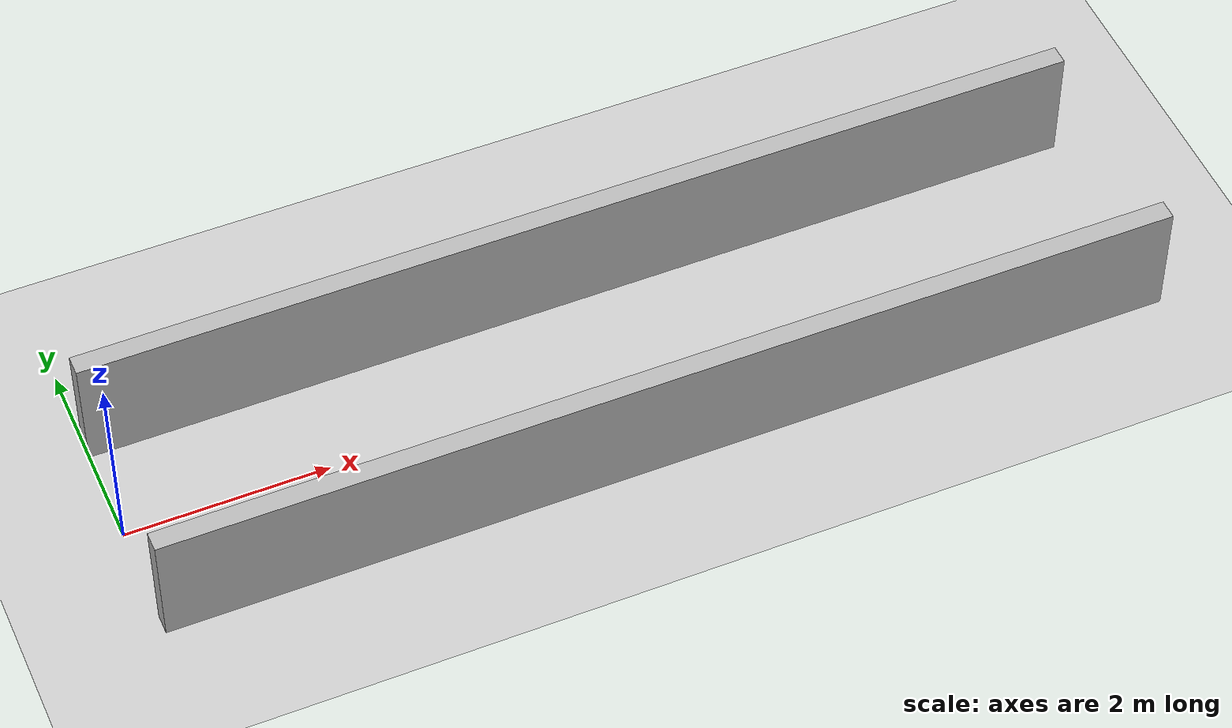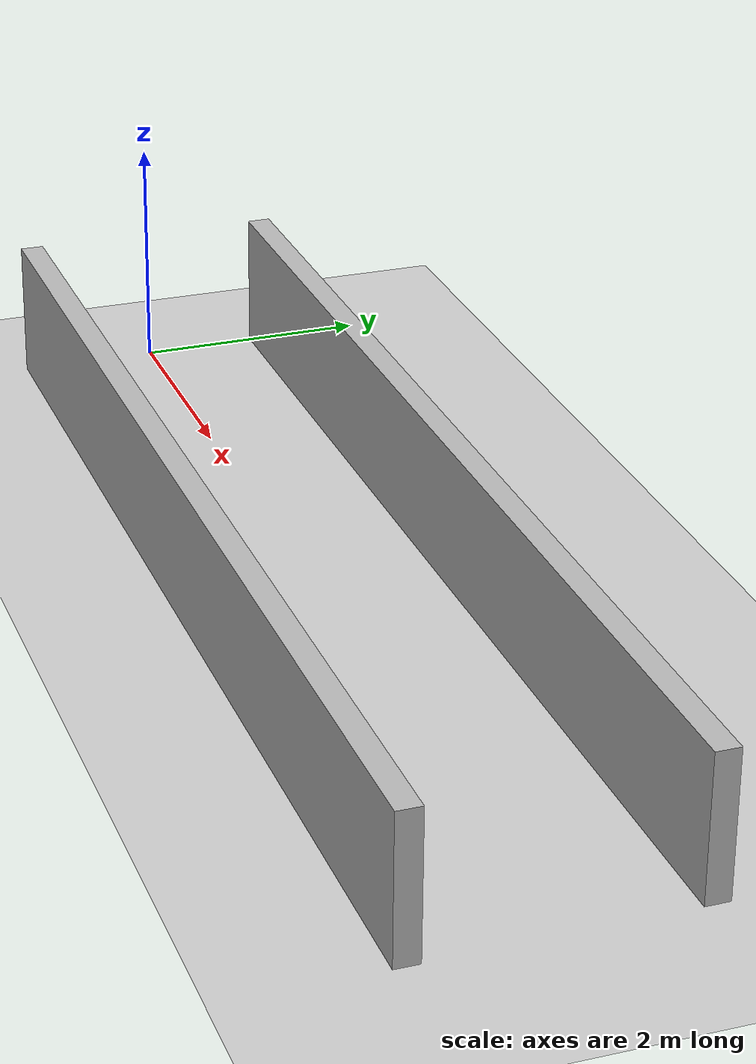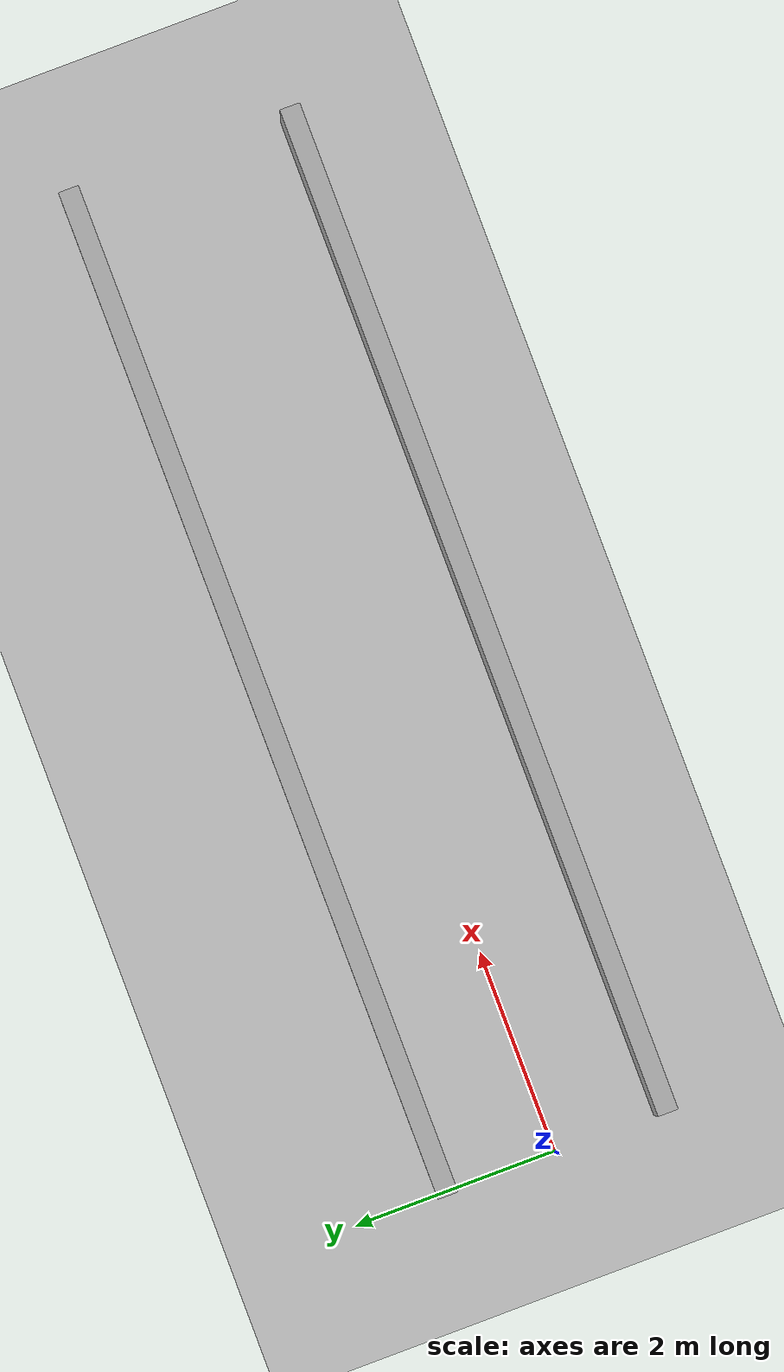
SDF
<?xml version="1.0"?>
<sdf version="1.6">
  <world name="v2-04g-r3-corridor-s5031">
    <gravity>0 0 -9.81</gravity>
    <physics name="v2_deterministic" type="ode">
      <max_step_size>0.002</max_step_size>
      <real_time_update_rate>500</real_time_update_rate>
    </physics>
    <include>
      <uri>model://sun</uri>
    </include>
    <include>
      <uri>model://ground_plane</uri>
    </include>
    <model name="corridor-left">
      <static>true</static>
      <pose>4.990932130 1.102563258 0.600000000 0 0 0.002683398</pose>
      <link name="link">
        <collision name="collision">
          <geometry>
            <box>
              <size>10.000000 0.200000 1.200000</size>
            </box>
          </geometry>
        </collision>
        <visual name="visual">
          <geometry>
            <box>
              <size>10.000000 0.200000 1.200000</size>
            </box>
          </geometry>
        </visual>
      </link>
    </model>
    <model name="corridor-right">
      <static>true</static>
      <pose>4.992621323 -1.087447243 0.600000000 0 0 0.000443757</pose>
      <link name="link">
        <collision name="collision">
          <geometry>
            <box>
              <size>10.000000 0.200000 1.200000</size>
            </box>
          </geometry>
        </collision>
        <visual name="visual">
          <geometry>
            <box>
              <size>10.000000 0.200000 1.200000</size>
            </box>
          </geometry>
        </visual>
      </link>
    </model>
  </world>
</sdf>
